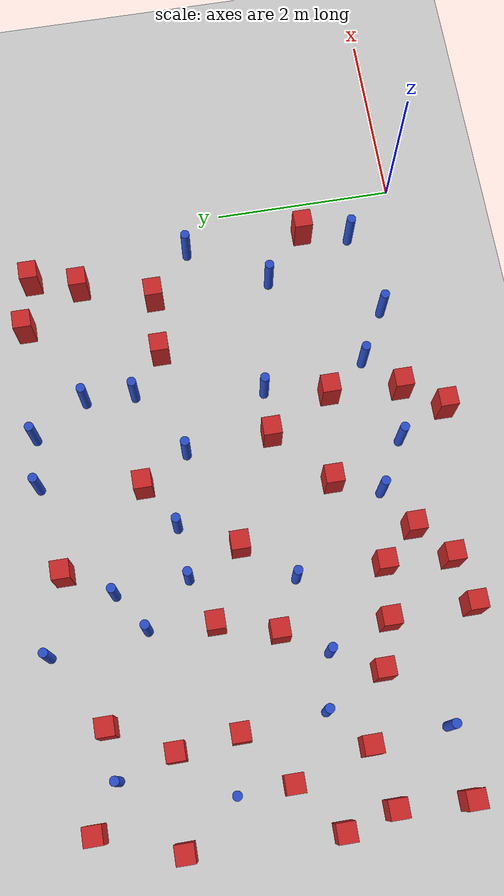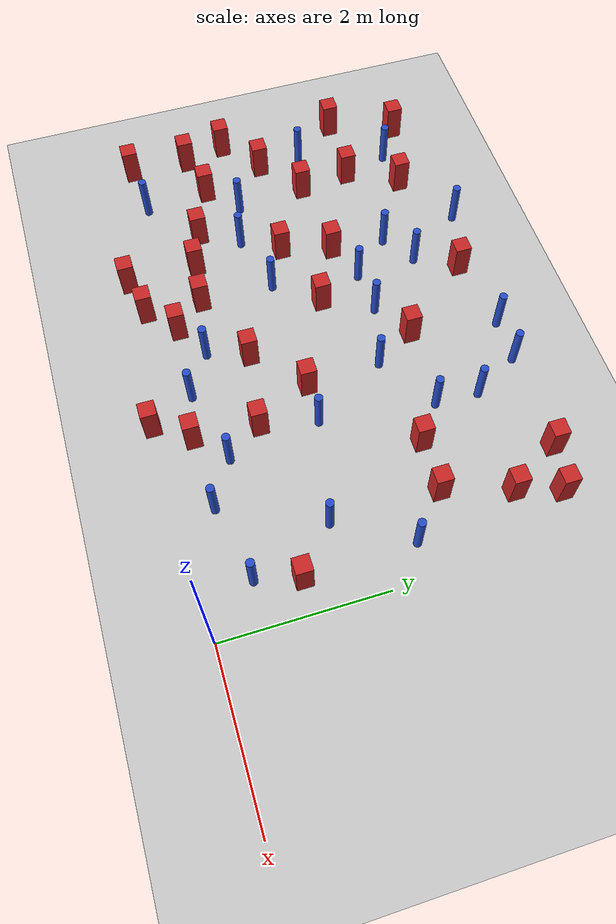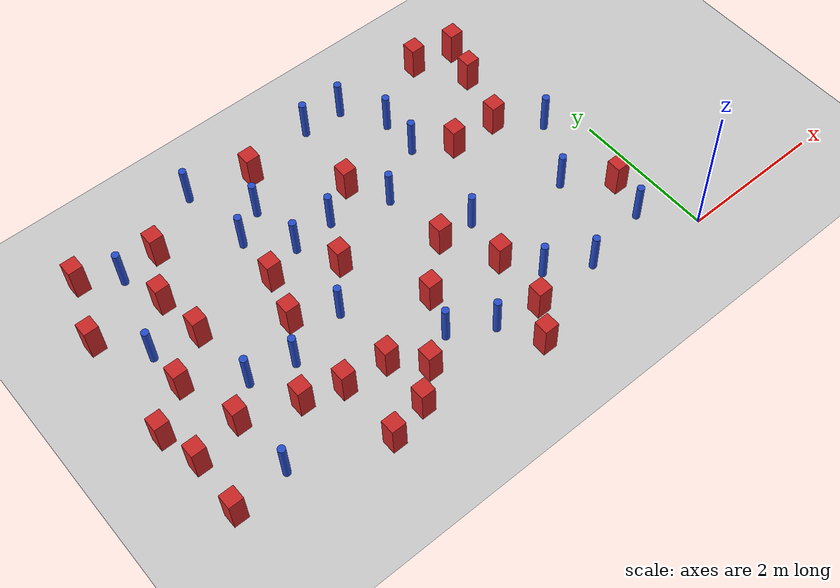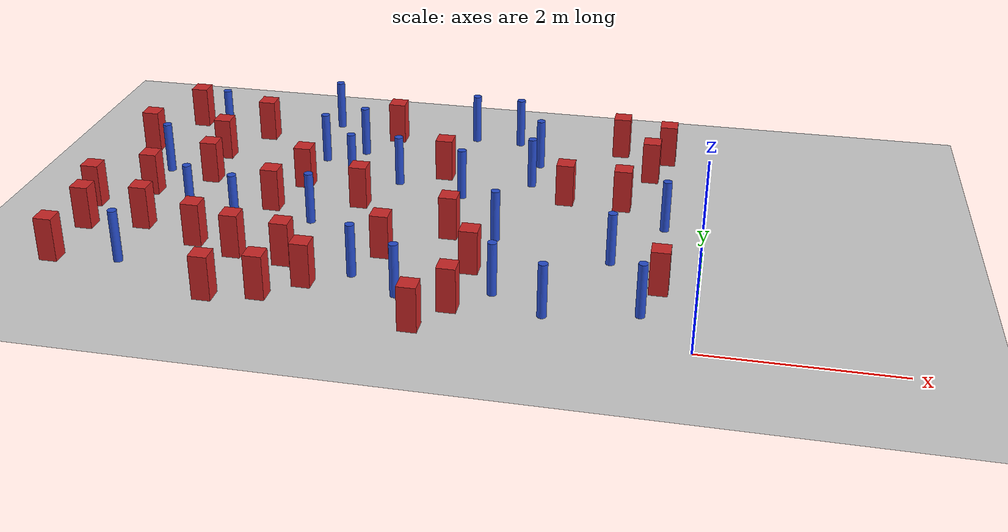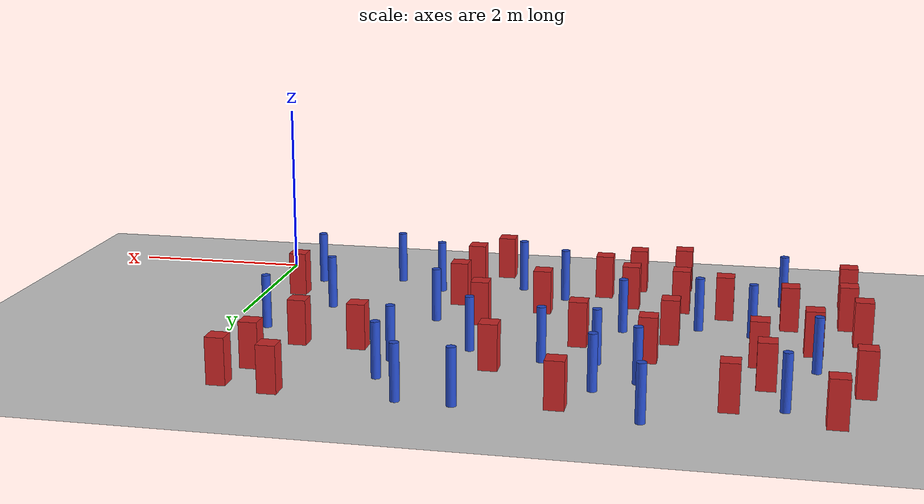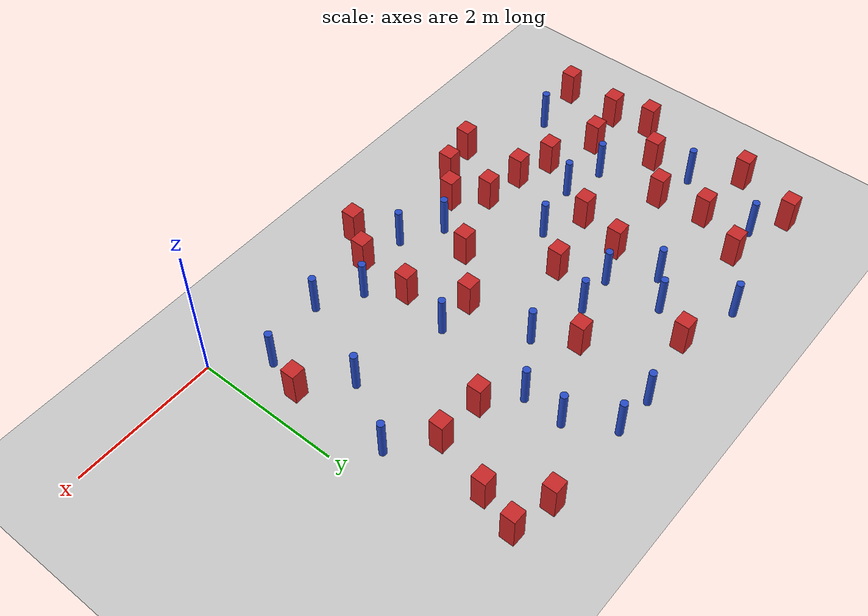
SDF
<sdf version="1.6">
 <world name="default">
  <model name="ground_plane">
   <static>1</static>
   <link name="link">
    <collision name="collision">
     <geometry><plane><normal>0 0 1</normal><size>100 100</size></plane></geometry>
     <surface><friction><ode><mu>100</mu><mu2>50</mu2></ode></friction></surface>
    </collision>
    <visual name="visual">
     <cast_shadows>0</cast_shadows>
     <geometry><plane><normal>0 0 1</normal><size>100 100</size></plane></geometry>
     <material>
      <ambient>1.0 1.0 1.0 1.0</ambient>
      <diffuse>0.8 0.8 0.8 1.0</diffuse>
      <specular>0.01 0.01 0.01 1.000000</specular>
     </material>
    </visual>
   </link>
  </model>
  <model name="square_post_obstacle3">
   <static>true</static>
   <pose>-1.10719621813 4.36680320502 1.91545236811e-07 -7.35059704564e-06 1.12565212e-07 2.39332434364e-05</pose>
   <link name="link">
    <pose>0 0 0.25 0 -0 0</pose>
    <inertial>
     <mass>100</mass>
     <inertia>
      <ixx>0.166667</ixx>
      <ixy>0</ixy>
      <ixz>0</ixz>
      <iyy>0.166667</iyy>
      <iyz>0</iyz>
      <izz>0.166667</izz>
     </inertia>
    </inertial>
    <collision name="collision"><geometry><box><size>.2 .2 .5</size></box></geometry></collision>
    <visual name="visual">
     <geometry><box><size>.2 .2 .5</size></box></geometry>
     <material>
      <script><name>Gazebo/Red</name><uri>file://media/materials/scripts/gazebo.material</uri></script>
     </material>
    </visual>
   </link>
  </model>
  <model name="square_post_obstacle7">
   <static>true</static>
   <pose>-3.36972529665 1.28270405987 1.91545236811e-07 -7.35059704564e-06 1.12565212e-07 2.39332434364e-05</pose>
   <link name="link">
    <pose>0 0 0.25 0 -0 0</pose>
    <inertial>
     <mass>100</mass>
     <inertia>
      <ixx>0.166667</ixx>
      <ixy>0</ixy>
      <ixz>0</ixz>
      <iyy>0.166667</iyy>
      <iyz>0</iyz>
      <izz>0.166667</izz>
     </inertia>
    </inertial>
    <collision name="collision"><geometry><box><size>.2 .2 .5</size></box></geometry></collision>
    <visual name="visual">
     <geometry><box><size>.2 .2 .5</size></box></geometry>
     <material>
      <script><name>Gazebo/Red</name><uri>file://media/materials/scripts/gazebo.material</uri></script>
     </material>
    </visual>
   </link>
  </model>
  <model name="square_post_obstacle9">
   <static>true</static>
   <pose>-4.9279009625 0.974077663801 1.91545236811e-07 -7.35059704564e-06 1.12565212e-07 2.39332434364e-05</pose>
   <link name="link">
    <pose>0 0 0.25 0 -0 0</pose>
    <inertial>
     <mass>100</mass>
     <inertia>
      <ixx>0.166667</ixx>
      <ixy>0</ixy>
      <ixz>0</ixz>
      <iyy>0.166667</iyy>
      <iyz>0</iyz>
      <izz>0.166667</izz>
     </inertia>
    </inertial>
    <collision name="collision"><geometry><box><size>.2 .2 .5</size></box></geometry></collision>
    <visual name="visual">
     <geometry><box><size>.2 .2 .5</size></box></geometry>
     <material>
      <script><name>Gazebo/Red</name><uri>file://media/materials/scripts/gazebo.material</uri></script>
     </material>
    </visual>
   </link>
  </model>
  <model name="pole_obstacle10">
   <static>true</static>
   <pose>-2.38232317125 4.39829521581 7.38925637345e-09 -8.47170692798e-08 1.24976765033e-08 -1.74513093019e-07</pose>
   <link name="link">
    <pose>0 0 0.3 0 -0 0</pose>
    <inertial>
     <mass>1</mass>
     <inertia><ixx>0.145833</ixx><ixy>0</ixy><ixz>0</ixz><iyy>0.145833</iyy><iyz>0</iyz><izz>0.125</izz></inertia>
    </inertial>
    <collision name="collision">
     <geometry><cylinder><radius>0.05</radius><length>.6</length></cylinder></geometry>
    </collision>
    <visual name="visual">
     <geometry><cylinder><radius>0.05</radius><length>.6</length></cylinder></geometry>
     <material>
      <script><name>Gazebo/Blue</name><uri>file://media/materials/scripts/gazebo.material</uri></script>
     </material>
    </visual>
   </link>
  </model>
  <model name="pole_obstacle11">
   <static>true</static>
   <pose>-4.21918870109 3.75574218441 7.38925637345e-09 -8.47170692798e-08 1.24976764937e-08 -1.74513093023e-07</pose>
   <link name="link">
    <pose>0 0 0.3 0 -0 0</pose>
    <inertial>
     <mass>1</mass>
     <inertia><ixx>0.145833</ixx><ixy>0</ixy><ixz>0</ixz><iyy>0.145833</iyy><iyz>0</iyz><izz>0.125</izz></inertia>
    </inertial>
    <collision name="collision">
     <geometry><cylinder><radius>0.05</radius><length>.6</length></cylinder></geometry>
    </collision>
    <visual name="visual">
     <geometry><cylinder><radius>0.05</radius><length>.6</length></cylinder></geometry>
     <material>
      <script><name>Gazebo/Blue</name><uri>file://media/materials/scripts/gazebo.material</uri></script>
     </material>
    </visual>
   </link>
  </model>
  <model name="square_post_obstacle20">
   <static>true</static>
   <pose>-6.14055274575 1.40345468708 1.91545236811e-07 -7.35059704564e-06 1.12565212e-07 2.39332434364e-05</pose>
   <link name="link">
    <pose>0 0 0.25 0 -0 0</pose>
    <inertial>
     <mass>100</mass>
     <inertia>
      <ixx>0.166667</ixx>
      <ixy>0</ixy>
      <ixz>0</ixz>
      <iyy>0.166667</iyy>
      <iyz>0</iyz>
      <izz>0.166667</izz>
     </inertia>
    </inertial>
    <collision name="collision"><geometry><box><size>.2 .2 .5</size></box></geometry></collision>
    <visual name="visual">
     <geometry><box><size>.2 .2 .5</size></box></geometry>
     <material>
      <script><name>Gazebo/Red</name><uri>file://media/materials/scripts/gazebo.material</uri></script>
     </material>
    </visual>
   </link>
  </model>
  <model name="pole_obstacle16">
   <static>true</static>
   <pose>-2.80424383542 2.79158869765 7.38925637345e-09 -8.47170692798e-08 1.24976764939e-08 -1.74513093025e-07</pose>
   <link name="link">
    <pose>0 0 0.3 0 -0 0</pose>
    <inertial>
     <mass>1</mass>
     <inertia><ixx>0.145833</ixx><ixy>0</ixy><ixz>0</ixz><iyy>0.145833</iyy><iyz>0</iyz><izz>0.125</izz></inertia>
    </inertial>
    <collision name="collision">
     <geometry><cylinder><radius>0.05</radius><length>.6</length></cylinder></geometry>
    </collision>
    <visual name="visual">
     <geometry><cylinder><radius>0.05</radius><length>.6</length></cylinder></geometry>
     <material>
      <script><name>Gazebo/Blue</name><uri>file://media/materials/scripts/gazebo.material</uri></script>
     </material>
    </visual>
   </link>
  </model>
  <model name="square_post_obstacle27">
   <static>true</static>
   <pose>-5.89703210249 3.34783388977 1.91545236811e-07 -7.35059704564e-06 1.12565212e-07 2.39332434364e-05</pose>
   <link name="link">
    <pose>0 0 0.25 0 -0 0</pose>
    <inertial>
     <mass>100</mass>
     <inertia>
      <ixx>0.166667</ixx>
      <ixy>0</ixy>
      <ixz>0</ixz>
      <iyy>0.166667</iyy>
      <iyz>0</iyz>
      <izz>0.166667</izz>
     </inertia>
    </inertial>
    <collision name="collision"><geometry><box><size>.2 .2 .5</size></box></geometry></collision>
    <visual name="visual">
     <geometry><box><size>.2 .2 .5</size></box></geometry>
     <material>
      <script><name>Gazebo/Red</name><uri>file://media/materials/scripts/gazebo.material</uri></script>
     </material>
    </visual>
   </link>
  </model>
  <model name="pole_obstacle18">
   <static>true</static>
   <pose>-2.23694054401 1.8390364967 7.38925637345e-09 -8.471706928e-08 1.24976765152e-08 -1.74513093012e-07</pose>
   <link name="link">
    <pose>0 0 0.3 0 -0 0</pose>
    <inertial>
     <mass>1</mass>
     <inertia><ixx>0.145833</ixx><ixy>0</ixy><ixz>0</ixz><iyy>0.145833</iyy><iyz>0</iyz><izz>0.125</izz></inertia>
    </inertial>
    <collision name="collision">
     <geometry><cylinder><radius>0.05</radius><length>.6</length></cylinder></geometry>
    </collision>
    <visual name="visual">
     <geometry><cylinder><radius>0.05</radius><length>.6</length></cylinder></geometry>
     <material>
      <script><name>Gazebo/Blue</name><uri>file://media/materials/scripts/gazebo.material</uri></script>
     </material>
    </visual>
   </link>
  </model>
  <model name="square_post_obstacle33">
   <static>true</static>
   <pose>-4.00395516487 0.523889461266 1.91545236811e-07 -7.35059704564e-06 1.12565212e-07 2.39332434364e-05</pose>
   <link name="link">
    <pose>0 0 0.25 0 -0 0</pose>
    <inertial>
     <mass>100</mass>
     <inertia>
      <ixx>0.166667</ixx>
      <ixy>0</ixy>
      <ixz>0</ixz>
      <iyy>0.166667</iyy>
      <iyz>0</iyz>
      <izz>0.166667</izz>
     </inertia>
    </inertial>
    <collision name="collision"><geometry><box><size>.2 .2 .5</size></box></geometry></collision>
    <visual name="visual">
     <geometry><box><size>.2 .2 .5</size></box></geometry>
     <material>
      <script><name>Gazebo/Red</name><uri>file://media/materials/scripts/gazebo.material</uri></script>
     </material>
    </visual>
   </link>
  </model>
  <model name="pole_obstacle51">
   <static>true</static>
   <pose>-4.17242967494 2.96558959442 7.38925637345e-09 -8.47170692798e-08 1.24976764937e-08 -1.74513093023e-07</pose>
   <link name="link">
    <pose>0 0 0.3 0 -0 0</pose>
    <inertial>
     <mass>1</mass>
     <inertia><ixx>0.145833</ixx><ixy>0</ixy><ixz>0</ixz><iyy>0.145833</iyy><iyz>0</iyz><izz>0.125</izz></inertia>
    </inertial>
    <collision name="collision">
     <geometry><cylinder><radius>0.05</radius><length>.6</length></cylinder></geometry>
    </collision>
    <visual name="visual">
     <geometry><cylinder><radius>0.05</radius><length>.6</length></cylinder></geometry>
     <material>
      <script><name>Gazebo/Blue</name><uri>file://media/materials/scripts/gazebo.material</uri></script>
     </material>
    </visual>
   </link>
  </model>
  <model name="square_post_obstacle57">
   <static>true</static>
   <pose>-5.81708361664 2.67871237677 1.91545236811e-07 -7.35059704564e-06 1.12565212e-07 2.39332434364e-05</pose>
   <link name="link">
    <pose>0 0 0.25 0 -0 0</pose>
    <inertial>
     <mass>100</mass>
     <inertia>
      <ixx>0.166667</ixx>
      <ixy>0</ixy>
      <ixz>0</ixz>
      <iyy>0.166667</iyy>
      <iyz>0</iyz>
      <izz>0.166667</izz>
     </inertia>
    </inertial>
    <collision name="collision"><geometry><box><size>.2 .2 .5</size></box></geometry></collision>
    <visual name="visual">
     <geometry><box><size>.2 .2 .5</size></box></geometry>
     <material>
      <script><name>Gazebo/Red</name><uri>file://media/materials/scripts/gazebo.material</uri></script>
     </material>
    </visual>
   </link>
  </model>
  <model name="square_post_obstacle59">
   <static>true</static>
   <pose>-6.38315625009 2.23060803802 1.91545236811e-07 -7.35059704564e-06 1.12565212e-07 2.39332434364e-05</pose>
   <link name="link">
    <pose>0 0 0.25 0 -0 0</pose>
    <inertial>
     <mass>100</mass>
     <inertia>
      <ixx>0.166667</ixx>
      <ixy>0</ixy>
      <ixz>0</ixz>
      <iyy>0.166667</iyy>
      <iyz>0</iyz>
      <izz>0.166667</izz>
     </inertia>
    </inertial>
    <collision name="collision"><geometry><box><size>.2 .2 .5</size></box></geometry></collision>
    <visual name="visual">
     <geometry><box><size>.2 .2 .5</size></box></geometry>
     <material>
      <script><name>Gazebo/Red</name><uri>file://media/materials/scripts/gazebo.material</uri></script>
     </material>
    </visual>
   </link>
  </model>
  <model name="pole_obstacle57">
   <static>true</static>
   <pose>-4.63784793239 3.46806277594 7.38925637345e-09 -8.47170692798e-08 1.24976764937e-08 -1.74513093023e-07</pose>
   <link name="link">
    <pose>0 0 0.3 0 -0 0</pose>
    <inertial>
     <mass>1</mass>
     <inertia><ixx>0.145833</ixx><ixy>0</ixy><ixz>0</ixz><iyy>0.145833</iyy><iyz>0</iyz><izz>0.125</izz></inertia>
    </inertial>
    <collision name="collision">
     <geometry><cylinder><radius>0.05</radius><length>.6</length></cylinder></geometry>
    </collision>
    <visual name="visual">
     <geometry><cylinder><radius>0.05</radius><length>.6</length></cylinder></geometry>
     <material>
      <script><name>Gazebo/Blue</name><uri>file://media/materials/scripts/gazebo.material</uri></script>
     </material>
    </visual>
   </link>
  </model>
  <model name="square_post_obstacle66">
   <static>true</static>
   <pose>-3.10897486808 3.30142375313 1.91545236811e-07 -7.35059704564e-06 1.12565212e-07 2.39332434364e-05</pose>
   <link name="link">
    <pose>0 0 0.25 0 -0 0</pose>
    <inertial>
     <mass>100</mass>
     <inertia>
      <ixx>0.166667</ixx>
      <ixy>0</ixy>
      <ixz>0</ixz>
      <iyy>0.166667</iyy>
      <iyz>0</iyz>
      <izz>0.166667</izz>
     </inertia>
    </inertial>
    <collision name="collision"><geometry><box><size>.2 .2 .5</size></box></geometry></collision>
    <visual name="visual">
     <geometry><box><size>.2 .2 .5</size></box></geometry>
     <material>
      <script><name>Gazebo/Red</name><uri>file://media/materials/scripts/gazebo.material</uri></script>
     </material>
    </visual>
   </link>
  </model>
  <model name="pole_obstacle74">
   <static>true</static>
   <pose>-0.542082268517 0.573523336044 7.38925637345e-09 -8.471706928e-08 1.24976765092e-08 -1.74513093015e-07</pose>
   <link name="link">
    <pose>0 0 0.3 0 -0 0</pose>
    <inertial>
     <mass>1</mass>
     <inertia><ixx>0.145833</ixx><ixy>0</ixy><ixz>0</ixz><iyy>0.145833</iyy><iyz>0</iyz><izz>0.125</izz></inertia>
    </inertial>
    <collision name="collision">
     <geometry><cylinder><radius>0.05</radius><length>.6</length></cylinder></geometry>
    </collision>
    <visual name="visual">
     <geometry><cylinder><radius>0.05</radius><length>.6</length></cylinder></geometry>
     <material>
      <script><name>Gazebo/Blue</name><uri>file://media/materials/scripts/gazebo.material</uri></script>
     </material>
    </visual>
   </link>
  </model>
  <model name="pole_obstacle76">
   <static>true</static>
   <pose>-1.49585294979 0.376847962612 7.38925637345e-09 -8.47170692799e-08 1.24976765065e-08 -1.74513093017e-07</pose>
   <link name="link">
    <pose>0 0 0.3 0 -0 0</pose>
    <inertial>
     <mass>1</mass>
     <inertia><ixx>0.145833</ixx><ixy>0</ixy><ixz>0</ixz><iyy>0.145833</iyy><iyz>0</iyz><izz>0.125</izz></inertia>
    </inertial>
    <collision name="collision">
     <geometry><cylinder><radius>0.05</radius><length>.6</length></cylinder></geometry>
    </collision>
    <visual name="visual">
     <geometry><cylinder><radius>0.05</radius><length>.6</length></cylinder></geometry>
     <material>
      <script><name>Gazebo/Blue</name><uri>file://media/materials/scripts/gazebo.material</uri></script>
     </material>
    </visual>
   </link>
  </model>
  <model name="square_post_obstacle78">
   <static>true</static>
   <pose>-0.953436675386 2.88903512515 1.91545236811e-07 -7.35059704564e-06 1.12565212e-07 2.39332434364e-05</pose>
   <link name="link">
    <pose>0 0 0.25 0 -0 0</pose>
    <inertial>
     <mass>100</mass>
     <inertia>
      <ixx>0.166667</ixx>
      <ixy>0</ixy>
      <ixz>0</ixz>
      <iyy>0.166667</iyy>
      <iyz>0</iyz>
      <izz>0.166667</izz>
     </inertia>
    </inertial>
    <collision name="collision"><geometry><box><size>.2 .2 .5</size></box></geometry></collision>
    <visual name="visual">
     <geometry><box><size>.2 .2 .5</size></box></geometry>
     <material>
      <script><name>Gazebo/Red</name><uri>file://media/materials/scripts/gazebo.material</uri></script>
     </material>
    </visual>
   </link>
  </model>
  <model name="square_post_obstacle79">
   <static>true</static>
   <pose>-6.80790824924 0.509732380505 1.91545236811e-07 -7.35059704564e-06 1.12565212e-07 2.39332434364e-05</pose>
   <link name="link">
    <pose>0 0 0.25 0 -0 0</pose>
    <inertial>
     <mass>100</mass>
     <inertia>
      <ixx>0.166667</ixx>
      <ixy>0</ixy>
      <ixz>0</ixz>
      <iyy>0.166667</iyy>
      <iyz>0</iyz>
      <izz>0.166667</izz>
     </inertia>
    </inertial>
    <collision name="collision"><geometry><box><size>.2 .2 .5</size></box></geometry></collision>
    <visual name="visual">
     <geometry><box><size>.2 .2 .5</size></box></geometry>
     <material>
      <script><name>Gazebo/Red</name><uri>file://media/materials/scripts/gazebo.material</uri></script>
     </material>
    </visual>
   </link>
  </model>
  <model name="pole_obstacle94">
   <static>true</static>
   <pose>-3.01776475598 0.465777481783 7.38925637345e-09 -8.47170692801e-08 1.24976765209e-08 -1.74513093011e-07</pose>
   <link name="link">
    <pose>0 0 0.3 0 -0 0</pose>
    <inertial>
     <mass>1</mass>
     <inertia><ixx>0.145833</ixx><ixy>0</ixy><ixz>0</ixz><iyy>0.145833</iyy><iyz>0</iyz><izz>0.125</izz></inertia>
    </inertial>
    <collision name="collision">
     <geometry><cylinder><radius>0.05</radius><length>.6</length></cylinder></geometry>
    </collision>
    <visual name="visual">
     <geometry><cylinder><radius>0.05</radius><length>.6</length></cylinder></geometry>
     <material>
      <script><name>Gazebo/Blue</name><uri>file://media/materials/scripts/gazebo.material</uri></script>
     </material>
    </visual>
   </link>
  </model>
  <model name="square_post_obstacle88">
   <static>true</static>
   <pose>-4.68591609906 2.7587422548 1.91545236811e-07 -7.35059704564e-06 1.12565212e-07 2.39332434364e-05</pose>
   <link name="link">
    <pose>0 0 0.25 0 -0 0</pose>
    <inertial>
     <mass>100</mass>
     <inertia>
      <ixx>0.166667</ixx>
      <ixy>0</ixy>
      <ixz>0</ixz>
      <iyy>0.166667</iyy>
      <iyz>0</iyz>
      <izz>0.166667</izz>
     </inertia>
    </inertial>
    <collision name="collision"><geometry><box><size>.2 .2 .5</size></box></geometry></collision>
    <visual name="visual">
     <geometry><box><size>.2 .2 .5</size></box></geometry>
     <material>
      <script><name>Gazebo/Red</name><uri>file://media/materials/scripts/gazebo.material</uri></script>
     </material>
    </visual>
   </link>
  </model>
  <model name="pole_obstacle101">
   <static>true</static>
   <pose>-4.75335805314 4.50838401554 7.38925637345e-09 -8.47170692796e-08 1.24976764786e-08 -1.74513093032e-07</pose>
   <link name="link">
    <pose>0 0 0.3 0 -0 0</pose>
    <inertial>
     <mass>1</mass>
     <inertia><ixx>0.145833</ixx><ixy>0</ixy><ixz>0</ixz><iyy>0.145833</iyy><iyz>0</iyz><izz>0.125</izz></inertia>
    </inertial>
    <collision name="collision">
     <geometry><cylinder><radius>0.05</radius><length>.6</length></cylinder></geometry>
    </collision>
    <visual name="visual">
     <geometry><cylinder><radius>0.05</radius><length>.6</length></cylinder></geometry>
     <material>
      <script><name>Gazebo/Blue</name><uri>file://media/materials/scripts/gazebo.material</uri></script>
     </material>
    </visual>
   </link>
  </model>
  <model name="square_post_obstacle91">
   <static>true</static>
   <pose>-2.43741437415 0.344912635111 1.91545236811e-07 -7.35059704564e-06 1.12565212e-07 2.39332434364e-05</pose>
   <link name="link">
    <pose>0 0 0.25 0 -0 0</pose>
    <inertial>
     <mass>100</mass>
     <inertia>
      <ixx>0.166667</ixx>
      <ixy>0</ixy>
      <ixz>0</ixz>
      <iyy>0.166667</iyy>
      <iyz>0</iyz>
      <izz>0.166667</izz>
     </inertia>
    </inertial>
    <collision name="collision"><geometry><box><size>.2 .2 .5</size></box></geometry></collision>
    <visual name="visual">
     <geometry><box><size>.2 .2 .5</size></box></geometry>
     <material>
      <script><name>Gazebo/Red</name><uri>file://media/materials/scripts/gazebo.material</uri></script>
     </material>
    </visual>
   </link>
  </model>
  <model name="pole_obstacle105">
   <static>true</static>
   <pose>-2.9442992005 4.41865124777 7.38925637345e-09 -8.47170692798e-08 1.24976765033e-08 -1.74513093019e-07</pose>
   <link name="link">
    <pose>0 0 0.3 0 -0 0</pose>
    <inertial>
     <mass>1</mass>
     <inertia><ixx>0.145833</ixx><ixy>0</ixy><ixz>0</ixz><iyy>0.145833</iyy><iyz>0</iyz><izz>0.125</izz></inertia>
    </inertial>
    <collision name="collision">
     <geometry><cylinder><radius>0.05</radius><length>.6</length></cylinder></geometry>
    </collision>
    <visual name="visual">
     <geometry><cylinder><radius>0.05</radius><length>.6</length></cylinder></geometry>
     <material>
      <script><name>Gazebo/Blue</name><uri>file://media/materials/scripts/gazebo.material</uri></script>
     </material>
    </visual>
   </link>
  </model>
  <model name="pole_obstacle109">
   <static>true</static>
   <pose>-2.05797480923 3.26011209096 7.38925637345e-09 -8.47170692798e-08 1.24976764939e-08 -1.74513093025e-07</pose>
   <link name="link">
    <pose>0 0 0.3 0 -0 0</pose>
    <inertial>
     <mass>1</mass>
     <inertia><ixx>0.145833</ixx><ixy>0</ixy><ixz>0</ixz><iyy>0.145833</iyy><iyz>0</iyz><izz>0.125</izz></inertia>
    </inertial>
    <collision name="collision">
     <geometry><cylinder><radius>0.05</radius><length>.6</length></cylinder></geometry>
    </collision>
    <visual name="visual">
     <geometry><cylinder><radius>0.05</radius><length>.6</length></cylinder></geometry>
     <material>
      <script><name>Gazebo/Blue</name><uri>file://media/materials/scripts/gazebo.material</uri></script>
     </material>
    </visual>
   </link>
  </model>
  <model name="square_post_obstacle103">
   <static>true</static>
   <pose>-4.90898024911 0.074540737351 1.91545236811e-07 -7.35059704564e-06 1.12565212e-07 2.39332434364e-05</pose>
   <link name="link">
    <pose>0 0 0.25 0 -0 0</pose>
    <inertial>
     <mass>100</mass>
     <inertia>
      <ixx>0.166667</ixx>
      <ixy>0</ixy>
      <ixz>0</ixz>
      <iyy>0.166667</iyy>
      <iyz>0</iyz>
      <izz>0.166667</izz>
     </inertia>
    </inertial>
    <collision name="collision"><geometry><box><size>.2 .2 .5</size></box></geometry></collision>
    <visual name="visual">
     <geometry><box><size>.2 .2 .5</size></box></geometry>
     <material>
      <script><name>Gazebo/Red</name><uri>file://media/materials/scripts/gazebo.material</uri></script>
     </material>
    </visual>
   </link>
  </model>
  <model name="square_post_obstacle113">
   <static>true</static>
   <pose>-5.42681784324 1.13613515879 1.91545236811e-07 -7.35059704564e-06 1.12565212e-07 2.39332434364e-05</pose>
   <link name="link">
    <pose>0 0 0.25 0 -0 0</pose>
    <inertial>
     <mass>100</mass>
     <inertia>
      <ixx>0.166667</ixx>
      <ixy>0</ixy>
      <ixz>0</ixz>
      <iyy>0.166667</iyy>
      <iyz>0</iyz>
      <izz>0.166667</izz>
     </inertia>
    </inertial>
    <collision name="collision"><geometry><box><size>.2 .2 .5</size></box></geometry></collision>
    <visual name="visual">
     <geometry><box><size>.2 .2 .5</size></box></geometry>
     <material>
      <script><name>Gazebo/Red</name><uri>file://media/materials/scripts/gazebo.material</uri></script>
     </material>
    </visual>
   </link>
  </model>
  <model name="pole_obstacle128">
   <static>true</static>
   <pose>-2.04167448345 3.80770718496 7.38925637345e-09 -8.47170692793e-08 1.24976764444e-08 -1.74513093039e-07</pose>
   <link name="link">
    <pose>0 0 0.3 0 -0 0</pose>
    <inertial>
     <mass>1</mass>
     <inertia><ixx>0.145833</ixx><ixy>0</ixy><ixz>0</ixz><iyy>0.145833</iyy><iyz>0</iyz><izz>0.125</izz></inertia>
    </inertial>
    <collision name="collision">
     <geometry><cylinder><radius>0.05</radius><length>.6</length></cylinder></geometry>
    </collision>
    <visual name="visual">
     <geometry><cylinder><radius>0.05</radius><length>.6</length></cylinder></geometry>
     <material>
      <script><name>Gazebo/Blue</name><uri>file://media/materials/scripts/gazebo.material</uri></script>
     </material>
    </visual>
   </link>
  </model>
  <model name="square_post_obstacle120">
   <static>true</static>
   <pose>-4.87385419635 2.11800954645 1.91545236811e-07 -7.35059704564e-06 1.12565212e-07 2.39332434364e-05</pose>
   <link name="link">
    <pose>0 0 0.25 0 -0 0</pose>
    <inertial>
     <mass>100</mass>
     <inertia>
      <ixx>0.166667</ixx>
      <ixy>0</ixy>
      <ixz>0</ixz>
      <iyy>0.166667</iyy>
      <iyz>0</iyz>
      <izz>0.166667</izz>
     </inertia>
    </inertial>
    <collision name="collision"><geometry><box><size>.2 .2 .5</size></box></geometry></collision>
    <visual name="visual">
     <geometry><box><size>.2 .2 .5</size></box></geometry>
     <material>
      <script><name>Gazebo/Red</name><uri>file://media/materials/scripts/gazebo.material</uri></script>
     </material>
    </visual>
   </link>
  </model>
  <model name="square_post_obstacle121">
   <static>true</static>
   <pose>-4.38121419256 0.194796633101 1.91545236811e-07 -7.35059704564e-06 1.12565212e-07 2.39332434364e-05</pose>
   <link name="link">
    <pose>0 0 0.25 0 -0 0</pose>
    <inertial>
     <mass>100</mass>
     <inertia>
      <ixx>0.166667</ixx>
      <ixy>0</ixy>
      <ixz>0</ixz>
      <iyy>0.166667</iyy>
      <iyz>0</iyz>
      <izz>0.166667</izz>
     </inertia>
    </inertial>
    <collision name="collision"><geometry><box><size>.2 .2 .5</size></box></geometry></collision>
    <visual name="visual">
     <geometry><box><size>.2 .2 .5</size></box></geometry>
     <material>
      <script><name>Gazebo/Red</name><uri>file://media/materials/scripts/gazebo.material</uri></script>
     </material>
    </visual>
   </link>
  </model>
  <model name="pole_obstacle140">
   <static>true</static>
   <pose>-0.437004908947 2.44349097896 7.38925637345e-09 -8.471706928e-08 1.24976765084e-08 -1.74513093017e-07</pose>
   <link name="link">
    <pose>0 0 0.3 0 -0 0</pose>
    <inertial>
     <mass>1</mass>
     <inertia><ixx>0.145833</ixx><ixy>0</ixy><ixz>0</ixz><iyy>0.145833</iyy><iyz>0</iyz><izz>0.125</izz></inertia>
    </inertial>
    <collision name="collision">
     <geometry><cylinder><radius>0.05</radius><length>.6</length></cylinder></geometry>
    </collision>
    <visual name="visual">
     <geometry><cylinder><radius>0.05</radius><length>.6</length></cylinder></geometry>
     <material>
      <script><name>Gazebo/Blue</name><uri>file://media/materials/scripts/gazebo.material</uri></script>
     </material>
    </visual>
   </link>
  </model>
  <model name="square_post_obstacle126">
   <static>true</static>
   <pose>-5.55279193467 4.00462689872 1.91545236811e-07 -7.35059704564e-06 1.12565212e-07 2.39332434364e-05</pose>
   <link name="link">
    <pose>0 0 0.25 0 -0 0</pose>
    <inertial>
     <mass>100</mass>
     <inertia>
      <ixx>0.166667</ixx>
      <ixy>0</ixy>
      <ixz>0</ixz>
      <iyy>0.166667</iyy>
      <iyz>0</iyz>
      <izz>0.166667</izz>
     </inertia>
    </inertial>
    <collision name="collision"><geometry><box><size>.2 .2 .5</size></box></geometry></collision>
    <visual name="visual">
     <geometry><box><size>.2 .2 .5</size></box></geometry>
     <material>
      <script><name>Gazebo/Red</name><uri>file://media/materials/scripts/gazebo.material</uri></script>
     </material>
    </visual>
   </link>
  </model>
  <model name="square_post_obstacle128">
   <static>true</static>
   <pose>-0.695993070262 3.70799275597 1.91545236811e-07 -7.35059704564e-06 1.12565212e-07 2.39332434364e-05</pose>
   <link name="link">
    <pose>0 0 0.25 0 -0 0</pose>
    <inertial>
     <mass>100</mass>
     <inertia>
      <ixx>0.166667</ixx>
      <ixy>0</ixy>
      <ixz>0</ixz>
      <iyy>0.166667</iyy>
      <iyz>0</iyz>
      <izz>0.166667</izz>
     </inertia>
    </inertial>
    <collision name="collision"><geometry><box><size>.2 .2 .5</size></box></geometry></collision>
    <visual name="visual">
     <geometry><box><size>.2 .2 .5</size></box></geometry>
     <material>
      <script><name>Gazebo/Red</name><uri>file://media/materials/scripts/gazebo.material</uri></script>
     </material>
    </visual>
   </link>
  </model>
  <model name="square_post_obstacle129">
   <static>true</static>
   <pose>-6.90657165376 1.81394614612 1.91545236811e-07 -7.35059704564e-06 1.12565212e-07 2.39332434364e-05</pose>
   <link name="link">
    <pose>0 0 0.25 0 -0 0</pose>
    <inertial>
     <mass>100</mass>
     <inertia>
      <ixx>0.166667</ixx>
      <ixy>0</ixy>
      <ixz>0</ixz>
      <iyy>0.166667</iyy>
      <iyz>0</iyz>
      <izz>0.166667</izz>
     </inertia>
    </inertial>
    <collision name="collision"><geometry><box><size>.2 .2 .5</size></box></geometry></collision>
    <visual name="visual">
     <geometry><box><size>.2 .2 .5</size></box></geometry>
     <material>
      <script><name>Gazebo/Red</name><uri>file://media/materials/scripts/gazebo.material</uri></script>
     </material>
    </visual>
   </link>
  </model>
  <model name="pole_obstacle144">
   <static>true</static>
   <pose>-3.56065083555 0.779011135633 7.38925637345e-09 -8.471706928e-08 1.24976765177e-08 -1.74513093012e-07</pose>
   <link name="link">
    <pose>0 0 0.3 0 -0 0</pose>
    <inertial>
     <mass>1</mass>
     <inertia><ixx>0.145833</ixx><ixy>0</ixy><ixz>0</ixz><iyy>0.145833</iyy><iyz>0</iyz><izz>0.125</izz></inertia>
    </inertial>
    <collision name="collision">
     <geometry><cylinder><radius>0.05</radius><length>.6</length></cylinder></geometry>
    </collision>
    <visual name="visual">
     <geometry><cylinder><radius>0.05</radius><length>.6</length></cylinder></geometry>
     <material>
      <script><name>Gazebo/Blue</name><uri>file://media/materials/scripts/gazebo.material</uri></script>
     </material>
    </visual>
   </link>
  </model>
  <model name="square_post_obstacle136">
   <static>true</static>
   <pose>-2.73229322995 -0.0830219675401 1.91545236811e-07 -7.35059704564e-06 1.12565212e-07 2.39332434364e-05</pose>
   <link name="link">
    <pose>0 0 0.25 0 -0 0</pose>
    <inertial>
     <mass>100</mass>
     <inertia>
      <ixx>0.166667</ixx>
      <ixy>0</ixy>
      <ixz>0</ixz>
      <iyy>0.166667</iyy>
      <iyz>0</iyz>
      <izz>0.166667</izz>
     </inertia>
    </inertial>
    <collision name="collision"><geometry><box><size>.2 .2 .5</size></box></geometry></collision>
    <visual name="visual">
     <geometry><box><size>.2 .2 .5</size></box></geometry>
     <material>
      <script><name>Gazebo/Red</name><uri>file://media/materials/scripts/gazebo.material</uri></script>
     </material>
    </visual>
   </link>
  </model>
  <model name="square_post_obstacle142">
   <static>true</static>
   <pose>-6.54560222649 4.24485868419 1.91545236811e-07 -7.35059704564e-06 1.12565212e-07 2.39332434364e-05</pose>
   <link name="link">
    <pose>0 0 0.25 0 -0 0</pose>
    <inertial>
     <mass>100</mass>
     <inertia>
      <ixx>0.166667</ixx>
      <ixy>0</ixy>
      <ixz>0</ixz>
      <iyy>0.166667</iyy>
      <iyz>0</iyz>
      <izz>0.166667</izz>
     </inertia>
    </inertial>
    <collision name="collision"><geometry><box><size>.2 .2 .5</size></box></geometry></collision>
    <visual name="visual">
     <geometry><box><size>.2 .2 .5</size></box></geometry>
     <material>
      <script><name>Gazebo/Red</name><uri>file://media/materials/scripts/gazebo.material</uri></script>
     </material>
    </visual>
   </link>
  </model>
  <model name="square_post_obstacle143">
   <static>true</static>
   <pose>-1.61309552852 2.91257764874 1.91545236811e-07 -7.35059704564e-06 1.12565212e-07 2.39332434364e-05</pose>
   <link name="link">
    <pose>0 0 0.25 0 -0 0</pose>
    <inertial>
     <mass>100</mass>
     <inertia>
      <ixx>0.166667</ixx>
      <ixy>0</ixy>
      <ixz>0</ixz>
      <iyy>0.166667</iyy>
      <iyz>0</iyz>
      <izz>0.166667</izz>
     </inertia>
    </inertial>
    <collision name="collision"><geometry><box><size>.2 .2 .5</size></box></geometry></collision>
    <visual name="visual">
     <geometry><box><size>.2 .2 .5</size></box></geometry>
     <material>
      <script><name>Gazebo/Red</name><uri>file://media/materials/scripts/gazebo.material</uri></script>
     </material>
    </visual>
   </link>
  </model>
  <model name="square_post_obstacle152">
   <static>true</static>
   <pose>-0.400904915365 1.09799885221 1.91545236811e-07 -7.35059704564e-06 1.12565212e-07 2.39332434364e-05</pose>
   <link name="link">
    <pose>0 0 0.25 0 -0 0</pose>
    <inertial>
     <mass>100</mass>
     <inertia>
      <ixx>0.166667</ixx>
      <ixy>0</ixy>
      <ixz>0</ixz>
      <iyy>0.166667</iyy>
      <iyz>0</iyz>
      <izz>0.166667</izz>
     </inertia>
    </inertial>
    <collision name="collision"><geometry><box><size>.2 .2 .5</size></box></geometry></collision>
    <visual name="visual">
     <geometry><box><size>.2 .2 .5</size></box></geometry>
     <material>
      <script><name>Gazebo/Red</name><uri>file://media/materials/scripts/gazebo.material</uri></script>
     </material>
    </visual>
   </link>
  </model>
  <model name="pole_obstacle161">
   <static>true</static>
   <pose>-6.07977361852 3.9607783371 7.38925637345e-09 -8.47170692798e-08 1.2497676496e-08 -1.74513093023e-07</pose>
   <link name="link">
    <pose>0 0 0.3 0 -0 0</pose>
    <inertial>
     <mass>1</mass>
     <inertia><ixx>0.145833</ixx><ixy>0</ixy><ixz>0</ixz><iyy>0.145833</iyy><iyz>0</iyz><izz>0.125</izz></inertia>
    </inertial>
    <collision name="collision">
     <geometry><cylinder><radius>0.05</radius><length>.6</length></cylinder></geometry>
    </collision>
    <visual name="visual">
     <geometry><cylinder><radius>0.05</radius><length>.6</length></cylinder></geometry>
     <material>
      <script><name>Gazebo/Blue</name><uri>file://media/materials/scripts/gazebo.material</uri></script>
     </material>
    </visual>
   </link>
  </model>
  <model name="pole_obstacle162">
   <static>true</static>
   <pose>-4.33965014505 1.84584248703 7.38925637345e-09 -8.471706928e-08 1.24976765134e-08 -1.74513093015e-07</pose>
   <link name="link">
    <pose>0 0 0.3 0 -0 0</pose>
    <inertial>
     <mass>1</mass>
     <inertia><ixx>0.145833</ixx><ixy>0</ixy><ixz>0</ixz><iyy>0.145833</iyy><iyz>0</iyz><izz>0.125</izz></inertia>
    </inertial>
    <collision name="collision">
     <geometry><cylinder><radius>0.05</radius><length>.6</length></cylinder></geometry>
    </collision>
    <visual name="visual">
     <geometry><cylinder><radius>0.05</radius><length>.6</length></cylinder></geometry>
     <material>
      <script><name>Gazebo/Blue</name><uri>file://media/materials/scripts/gazebo.material</uri></script>
     </material>
    </visual>
   </link>
  </model>
  <model name="square_post_obstacle157">
   <static>true</static>
   <pose>-2.37638179449 1.13947655892 1.91545236811e-07 -7.35059704564e-06 1.12565212e-07 2.39332434364e-05</pose>
   <link name="link">
    <pose>0 0 0.25 0 -0 0</pose>
    <inertial>
     <mass>100</mass>
     <inertia>
      <ixx>0.166667</ixx>
      <ixy>0</ixy>
      <ixz>0</ixz>
      <iyy>0.166667</iyy>
      <iyz>0</iyz>
      <izz>0.166667</izz>
     </inertia>
    </inertial>
    <collision name="collision"><geometry><box><size>.2 .2 .5</size></box></geometry></collision>
    <visual name="visual">
     <geometry><box><size>.2 .2 .5</size></box></geometry>
     <material>
      <script><name>Gazebo/Red</name><uri>file://media/materials/scripts/gazebo.material</uri></script>
     </material>
    </visual>
   </link>
  </model>
  <model name="pole_obstacle170">
   <static>true</static>
   <pose>-3.60253219519 3.0038032432 7.38925637345e-09 -8.47170692798e-08 1.24976764939e-08 -1.74513093025e-07</pose>
   <link name="link">
    <pose>0 0 0.3 0 -0 0</pose>
    <inertial>
     <mass>1</mass>
     <inertia><ixx>0.145833</ixx><ixy>0</ixy><ixz>0</ixz><iyy>0.145833</iyy><iyz>0</iyz><izz>0.125</izz></inertia>
    </inertial>
    <collision name="collision">
     <geometry><cylinder><radius>0.05</radius><length>.6</length></cylinder></geometry>
    </collision>
    <visual name="visual">
     <geometry><cylinder><radius>0.05</radius><length>.6</length></cylinder></geometry>
     <material>
      <script><name>Gazebo/Blue</name><uri>file://media/materials/scripts/gazebo.material</uri></script>
     </material>
    </visual>
   </link>
  </model>
  <model name="pole_obstacle171">
   <static>true</static>
   <pose>-6.40433769251 2.80521597792 7.38925637345e-09 -8.47170692798e-08 1.24976764937e-08 -1.74513093023e-07</pose>
   <link name="link">
    <pose>0 0 0.3 0 -0 0</pose>
    <inertial>
     <mass>1</mass>
     <inertia><ixx>0.145833</ixx><ixy>0</ixy><ixz>0</ixz><iyy>0.145833</iyy><iyz>0</iyz><izz>0.125</izz></inertia>
    </inertial>
    <collision name="collision">
     <geometry><cylinder><radius>0.05</radius><length>.6</length></cylinder></geometry>
    </collision>
    <visual name="visual">
     <geometry><cylinder><radius>0.05</radius><length>.6</length></cylinder></geometry>
     <material>
      <script><name>Gazebo/Blue</name><uri>file://media/materials/scripts/gazebo.material</uri></script>
     </material>
    </visual>
   </link>
  </model>
  <model name="square_post_obstacle176">
   <static>true</static>
   <pose>-3.91299048222 2.38076805113 1.91545236811e-07 -7.35059704564e-06 1.12565212e-07 2.39332434364e-05</pose>
   <link name="link">
    <pose>0 0 0.25 0 -0 0</pose>
    <inertial>
     <mass>100</mass>
     <inertia>
      <ixx>0.166667</ixx>
      <ixy>0</ixy>
      <ixz>0</ixz>
      <iyy>0.166667</iyy>
      <iyz>0</iyz>
      <izz>0.166667</izz>
     </inertia>
    </inertial>
    <collision name="collision"><geometry><box><size>.2 .2 .5</size></box></geometry></collision>
    <visual name="visual">
     <geometry><box><size>.2 .2 .5</size></box></geometry>
     <material>
      <script><name>Gazebo/Red</name><uri>file://media/materials/scripts/gazebo.material</uri></script>
     </material>
    </visual>
   </link>
  </model>
  <model name="square_post_obstacle189">
   <static>true</static>
   <pose>-6.7736916242 1.27490206269 1.91545236811e-07 -7.35059704564e-06 1.12565212e-07 2.39332434364e-05</pose>
   <link name="link">
    <pose>0 0 0.25 0 -0 0</pose>
    <inertial>
     <mass>100</mass>
     <inertia>
      <ixx>0.166667</ixx>
      <ixy>0</ixy>
      <ixz>0</ixz>
      <iyy>0.166667</iyy>
      <iyz>0</iyz>
      <izz>0.166667</izz>
     </inertia>
    </inertial>
    <collision name="collision"><geometry><box><size>.2 .2 .5</size></box></geometry></collision>
    <visual name="visual">
     <geometry><box><size>.2 .2 .5</size></box></geometry>
     <material>
      <script><name>Gazebo/Red</name><uri>file://media/materials/scripts/gazebo.material</uri></script>
     </material>
    </visual>
   </link>
  </model>
  <model name="square_post_obstacle191">
   <static>true</static>
   <pose>-6.85208974053 3.388171721 1.91545236811e-07 -7.35059704564e-06 1.12565212e-07 2.39332434364e-05</pose>
   <link name="link">
    <pose>0 0 0.25 0 -0 0</pose>
    <inertial>
     <mass>100</mass>
     <inertia>
      <ixx>0.166667</ixx>
      <ixy>0</ixy>
      <ixz>0</ixz>
      <iyy>0.166667</iyy>
      <iyz>0</iyz>
      <izz>0.166667</izz>
     </inertia>
    </inertial>
    <collision name="collision"><geometry><box><size>.2 .2 .5</size></box></geometry></collision>
    <visual name="visual">
     <geometry><box><size>.2 .2 .5</size></box></geometry>
     <material>
      <script><name>Gazebo/Red</name><uri>file://media/materials/scripts/gazebo.material</uri></script>
     </material>
    </visual>
   </link>
  </model>
  <model name="pole_obstacle201">
   <static>true</static>
   <pose>-5.1589197108 1.63892648574 7.38925637345e-09 -8.471706928e-08 1.24976765134e-08 -1.74513093015e-07</pose>
   <link name="link">
    <pose>0 0 0.3 0 -0 0</pose>
    <inertial>
     <mass>1</mass>
     <inertia><ixx>0.145833</ixx><ixy>0</ixy><ixz>0</ixz><iyy>0.145833</iyy><iyz>0</iyz><izz>0.125</izz></inertia>
    </inertial>
    <collision name="collision">
     <geometry><cylinder><radius>0.05</radius><length>.6</length></cylinder></geometry>
    </collision>
    <visual name="visual">
     <geometry><cylinder><radius>0.05</radius><length>.6</length></cylinder></geometry>
     <material>
      <script><name>Gazebo/Blue</name><uri>file://media/materials/scripts/gazebo.material</uri></script>
     </material>
    </visual>
   </link>
  </model>
  <model name="square_post_obstacle198">
   <static>true</static>
   <pose>-3.9250046838 4.26332633963 1.91545236811e-07 -7.35059704564e-06 1.12565212e-07 2.39332434364e-05</pose>
   <link name="link">
    <pose>0 0 0.25 0 -0 0</pose>
    <inertial>
     <mass>100</mass>
     <inertia>
      <ixx>0.166667</ixx>
      <ixy>0</ixy>
      <ixz>0</ixz>
      <iyy>0.166667</iyy>
      <iyz>0</iyz>
      <izz>0.166667</izz>
     </inertia>
    </inertial>
    <collision name="collision"><geometry><box><size>.2 .2 .5</size></box></geometry></collision>
    <visual name="visual">
     <geometry><box><size>.2 .2 .5</size></box></geometry>
     <material>
      <script><name>Gazebo/Red</name><uri>file://media/materials/scripts/gazebo.material</uri></script>
     </material>
    </visual>
   </link>
  </model>
  <model name="pole_obstacle203">
   <static>true</static>
   <pose>-6.07760679024 0.573139723094 7.38925637345e-09 -8.47170692799e-08 1.24976765038e-08 -1.74513093018e-07</pose>
   <link name="link">
    <pose>0 0 0.3 0 -0 0</pose>
    <inertial>
     <mass>1</mass>
     <inertia><ixx>0.145833</ixx><ixy>0</ixy><ixz>0</ixz><iyy>0.145833</iyy><iyz>0</iyz><izz>0.125</izz></inertia>
    </inertial>
    <collision name="collision">
     <geometry><cylinder><radius>0.05</radius><length>.6</length></cylinder></geometry>
    </collision>
    <visual name="visual">
     <geometry><cylinder><radius>0.05</radius><length>.6</length></cylinder></geometry>
     <material>
      <script><name>Gazebo/Blue</name><uri>file://media/materials/scripts/gazebo.material</uri></script>
     </material>
    </visual>
   </link>
  </model>
  <model name="pole_obstacle206">
   <static>true</static>
   <pose>-2.0567527313 0.695812135532 7.38925637345e-09 -8.471706928e-08 1.24976765177e-08 -1.74513093012e-07</pose>
   <link name="link">
    <pose>0 0 0.3 0 -0 0</pose>
    <inertial>
     <mass>1</mass>
     <inertia><ixx>0.145833</ixx><ixy>0</ixy><ixz>0</ixz><iyy>0.145833</iyy><iyz>0</iyz><izz>0.125</izz></inertia>
    </inertial>
    <collision name="collision">
     <geometry><cylinder><radius>0.05</radius><length>.6</length></cylinder></geometry>
    </collision>
    <visual name="visual">
     <geometry><cylinder><radius>0.05</radius><length>.6</length></cylinder></geometry>
     <material>
      <script><name>Gazebo/Blue</name><uri>file://media/materials/scripts/gazebo.material</uri></script>
     </material>
    </visual>
   </link>
  </model>
  <model name="pole_obstacle213">
   <static>true</static>
   <pose>-5.73963393202 1.77548143388 7.38925637345e-09 -8.471706928e-08 1.24976765134e-08 -1.74513093015e-07</pose>
   <link name="link">
    <pose>0 0 0.3 0 -0 0</pose>
    <inertial>
     <mass>1</mass>
     <inertia><ixx>0.145833</ixx><ixy>0</ixy><ixz>0</ixz><iyy>0.145833</iyy><iyz>0</iyz><izz>0.125</izz></inertia>
    </inertial>
    <collision name="collision">
     <geometry><cylinder><radius>0.05</radius><length>.6</length></cylinder></geometry>
    </collision>
    <visual name="visual">
     <geometry><cylinder><radius>0.05</radius><length>.6</length></cylinder></geometry>
     <material>
      <script><name>Gazebo/Blue</name><uri>file://media/materials/scripts/gazebo.material</uri></script>
     </material>
    </visual>
   </link>
  </model>
  <model name="pole_obstacle221">
   <static>true</static>
   <pose>-0.944681776009 1.57190554158 7.38925637345e-09 -8.47170692799e-08 1.24976765033e-08 -1.7451309302e-07</pose>
   <link name="link">
    <pose>0 0 0.3 0 -0 0</pose>
    <inertial>
     <mass>1</mass>
     <inertia><ixx>0.145833</ixx><ixy>0</ixy><ixz>0</ixz><iyy>0.145833</iyy><iyz>0</iyz><izz>0.125</izz></inertia>
    </inertial>
    <collision name="collision">
     <geometry><cylinder><radius>0.05</radius><length>.6</length></cylinder></geometry>
    </collision>
    <visual name="visual">
     <geometry><cylinder><radius>0.05</radius><length>.6</length></cylinder></geometry>
     <material>
      <script><name>Gazebo/Blue</name><uri>file://media/materials/scripts/gazebo.material</uri></script>
     </material>
    </visual>
   </link>
  </model>
  <model name="square_post_obstacle202">
   <static>true</static>
   <pose>-2.7482000352 1.84665998808 1.91545236811e-07 -7.35059704564e-06 1.12565212e-07 2.39332434364e-05</pose>
   <link name="link">
    <pose>0 0 0.25 0 -0 0</pose>
    <inertial>
     <mass>100</mass>
     <inertia>
      <ixx>0.166667</ixx>
      <ixy>0</ixy>
      <ixz>0</ixz>
      <iyy>0.166667</iyy>
      <iyz>0</iyz>
      <izz>0.166667</izz>
     </inertia>
    </inertial>
    <collision name="collision"><geometry><box><size>.2 .2 .5</size></box></geometry></collision>
    <visual name="visual">
     <geometry><box><size>.2 .2 .5</size></box></geometry>
     <material>
      <script><name>Gazebo/Red</name><uri>file://media/materials/scripts/gazebo.material</uri></script>
     </material>
    </visual>
   </link>
  </model>
  <model name="square_post_obstacle207">
   <static>true</static>
   <pose>-0.534579035195 4.23697998808 1.91545236811e-07 -7.35059704564e-06 1.12565212e-07 2.39332434364e-05</pose>
   <link name="link">
    <pose>0 0 0.25 0 -0 0</pose>
    <inertial>
     <mass>100</mass>
     <inertia>
      <ixx>0.166667</ixx>
      <ixy>0</ixy>
      <ixz>0</ixz>
      <iyy>0.166667</iyy>
      <iyz>0</iyz>
      <izz>0.166667</izz>
     </inertia>
    </inertial>
    <collision name="collision"><geometry><box><size>.2 .2 .5</size></box></geometry></collision>
    <visual name="visual">
     <geometry><box><size>.2 .2 .5</size></box></geometry>
     <material>
      <script><name>Gazebo/Red</name><uri>file://media/materials/scripts/gazebo.material</uri></script>
     </material>
    </visual>
   </link>
  </model>
  <model name="square_post_obstacle215">
   <static>true</static>
   <pose>-4.3485600352 0.907383988081 1.91545236811e-07 -7.35059704564e-06 1.12565212e-07 2.39332434364e-05</pose>
   <link name="link">
    <pose>0 0 0.25 0 -0 0</pose>
    <inertial>
     <mass>100</mass>
     <inertia>
      <ixx>0.166667</ixx>
      <ixy>0</ixy>
      <ixz>0</ixz>
      <iyy>0.166667</iyy>
      <iyz>0</iyz>
      <izz>0.166667</izz>
     </inertia>
    </inertial>
    <collision name="collision"><geometry><box><size>.2 .2 .5</size></box></geometry></collision>
    <visual name="visual">
     <geometry><box><size>.2 .2 .5</size></box></geometry>
     <material>
      <script><name>Gazebo/Red</name><uri>file://media/materials/scripts/gazebo.material</uri></script>
     </material>
    </visual>
   </link>
  </model>
 </world>
</sdf>
